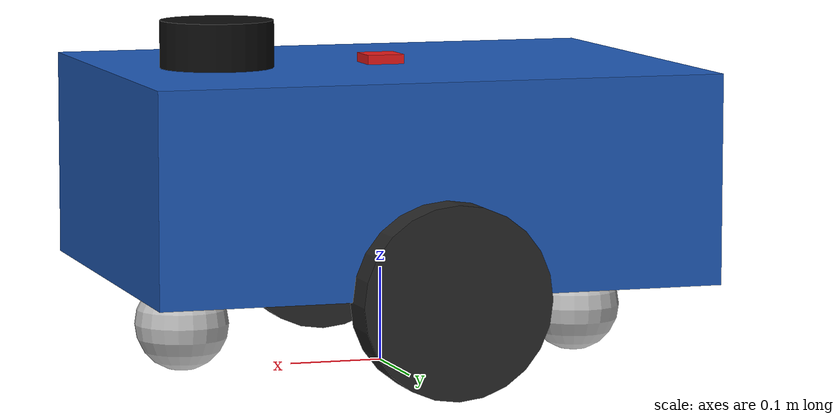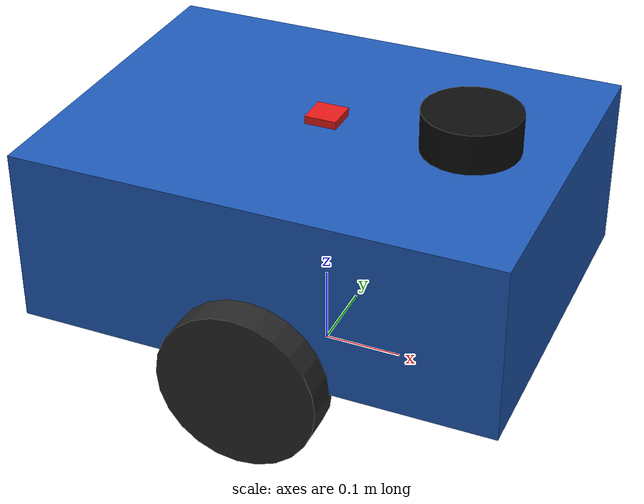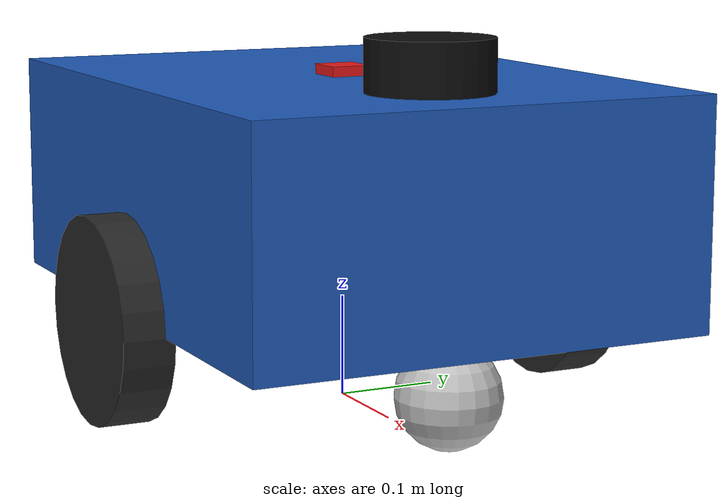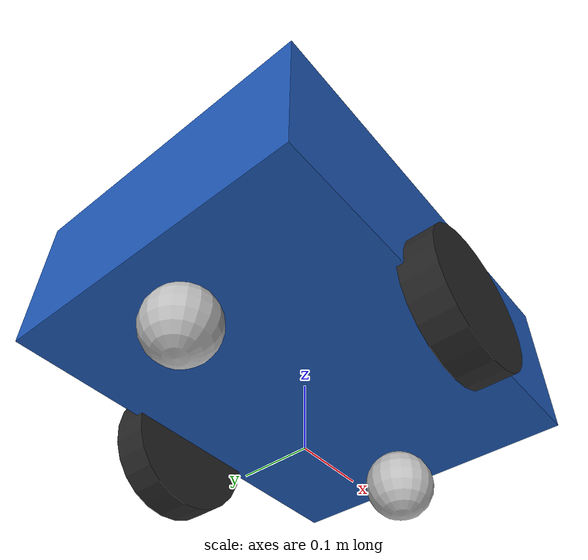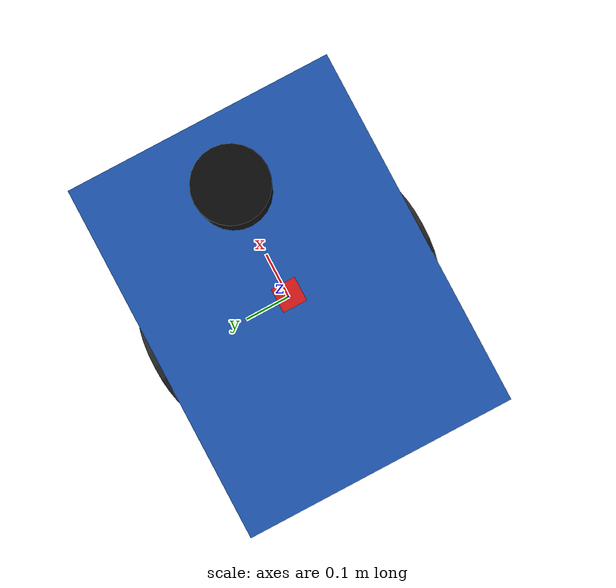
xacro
<?xml version="1.0"?>
<robot xmlns:xacro="http://www.ros.org/wiki/xacro" name="navigrid_amr">

  <!-- Robot Properties -->
  <xacro:property name="chassis_length" value="0.60"/>
  <xacro:property name="chassis_width"  value="0.45"/>
  <xacro:property name="chassis_height" value="0.22"/>
  <xacro:property name="chassis_mass"   value="18.0"/>

  <xacro:property name="wheel_radius"   value="0.10"/>
  <xacro:property name="wheel_width"    value="0.05"/>
  <xacro:property name="wheel_separation" value="0.48"/>
  <xacro:property name="wheel_mass"     value="2.0"/>

  <xacro:property name="caster_radius"  value="0.05"/>
  <xacro:property name="caster_mass"    value="0.75"/>

  <!-- Base Footprint (projection on ground) -->
  <link name="base_footprint"/>

  <joint name="base_footprint_joint" type="fixed">
    <parent link="base_footprint"/>
    <child link="base_link"/>
    <origin xyz="0 0 ${wheel_radius}" rpy="0 0 0"/>
  </joint>

  <!-- Base Link (Chassis) -->
  <link name="base_link">
    <visual>
      <origin xyz="0 0 ${chassis_height/2}" rpy="0 0 0"/>
      <geometry>
        <box size="${chassis_length} ${chassis_width} ${chassis_height}"/>
      </geometry>
      <material name="primary_blue">
        <color rgba="0.12 0.35 0.72 1.0"/>
      </material>
    </visual>
    <collision>
      <origin xyz="0 0 ${chassis_height/2}" rpy="0 0 0"/>
      <geometry>
        <box size="${chassis_length} ${chassis_width} ${chassis_height}"/>
      </geometry>
    </collision>
    <inertial>
      <origin xyz="0 0 ${chassis_height/2}" rpy="0 0 0"/>
      <mass value="${chassis_mass}"/>
      <inertia
        ixx="${(1.0/12.0) * chassis_mass * (chassis_width*chassis_width + chassis_height*chassis_height)}"
        ixy="0.0" ixz="0.0"
        iyy="${(1.0/12.0) * chassis_mass * (chassis_length*chassis_length + chassis_height*chassis_height)}"
        iyz="0.0"
        izz="${(1.0/12.0) * chassis_mass * (chassis_length*chassis_length + chassis_width*chassis_width)}"/>
    </inertial>
  </link>

  <!-- Drive Wheel Macro -->
  <xacro:macro name="drive_wheel" params="prefix y_offset">
    <link name="${prefix}_wheel_link">
      <visual>
        <origin xyz="0 0 0" rpy="${pi/2} 0 0"/>
        <geometry>
          <cylinder radius="${wheel_radius}" length="${wheel_width}"/>
        </geometry>
        <material name="wheel_dark">
          <color rgba="0.15 0.15 0.15 1.0"/>
        </material>
      </visual>
      <collision>
        <origin xyz="0 0 0" rpy="${pi/2} 0 0"/>
        <geometry>
          <cylinder radius="${wheel_radius}" length="${wheel_width}"/>
        </geometry>
      </collision>
      <inertial>
        <origin xyz="0 0 0" rpy="${pi/2} 0 0"/>
        <mass value="${wheel_mass}"/>
        <inertia
          ixx="${(1.0/12.0) * wheel_mass * (3*wheel_radius*wheel_radius + wheel_width*wheel_width)}"
          ixy="0.0" ixz="0.0"
          iyy="${(1.0/12.0) * wheel_mass * (3*wheel_radius*wheel_radius + wheel_width*wheel_width)}"
          iyz="0.0"
          izz="${0.5 * wheel_mass * wheel_radius * wheel_radius}"/>
      </inertial>
    </link>

    <joint name="${prefix}_wheel_joint" type="continuous">
      <parent link="base_link"/>
      <child link="${prefix}_wheel_link"/>
      <origin xyz="0 ${y_offset} 0" rpy="0 0 0"/>
      <axis xyz="0 1 0"/>
    </joint>
  </xacro:macro>

  <xacro:drive_wheel prefix="left"  y_offset="${wheel_separation / 2}"/>
  <xacro:drive_wheel prefix="right" y_offset="-${wheel_separation / 2}"/>

  <!-- Passive Caster Wheel Macro -->
  <xacro:macro name="caster_wheel" params="prefix x_offset">
    <link name="${prefix}_caster_link">
      <visual>
        <geometry>
          <sphere radius="${caster_radius}"/>
        </geometry>
        <material name="caster_silver">
          <color rgba="0.75 0.75 0.75 1.0"/>
        </material>
      </visual>
      <collision>
        <geometry>
          <sphere radius="${caster_radius}"/>
        </geometry>
      </collision>
      <inertial>
        <mass value="${caster_mass}"/>
        <inertia
          ixx="${(2.0/5.0) * caster_mass * caster_radius * caster_radius}" ixy="0.0" ixz="0.0"
          iyy="${(2.0/5.0) * caster_mass * caster_radius * caster_radius}" iyz="0.0"
          izz="${(2.0/5.0) * caster_mass * caster_radius * caster_radius}"/>
      </inertial>
    </link>

    <joint name="${prefix}_caster_joint" type="fixed">
      <parent link="base_link"/>
      <child link="${prefix}_caster_link"/>
      <origin xyz="${x_offset} 0 -${wheel_radius - caster_radius}" rpy="0 0 0"/>
    </joint>
  </xacro:macro>

  <xacro:caster_wheel prefix="front" x_offset="0.22"/>
  <xacro:caster_wheel prefix="rear"  x_offset="-0.22"/>

  <!-- LIDAR Sensor Link -->
  <link name="lidar_link">
    <visual>
      <origin xyz="0 0 0" rpy="0 0 0"/>
      <geometry>
        <cylinder radius="0.06" length="0.05"/>
      </geometry>
      <material name="sensor_black">
        <color rgba="0.05 0.05 0.05 1.0"/>
      </material>
    </visual>
    <collision>
      <origin xyz="0 0 0" rpy="0 0 0"/>
      <geometry>
        <cylinder radius="0.06" length="0.05"/>
      </geometry>
    </collision>
    <inertial>
      <mass value="0.3"/>
      <inertia ixx="0.001" ixy="0.0" ixz="0.0" iyy="0.001" iyz="0.0" izz="0.001"/>
    </inertial>
  </link>

  <joint name="lidar_joint" type="fixed">
    <parent link="base_link"/>
    <child link="lidar_link"/>
    <origin xyz="0.18 0 ${chassis_height + 0.025}" rpy="0 0 0"/>
  </joint>

  <!-- IMU Sensor Link -->
  <link name="imu_link">
    <visual>
      <geometry>
        <box size="0.04 0.04 0.02"/>
      </geometry>
      <material name="imu_red">
        <color rgba="0.9 0.1 0.1 1.0"/>
      </material>
    </visual>
    <collision>
      <geometry>
        <box size="0.04 0.04 0.02"/>
      </geometry>
    </collision>
    <inertial>
      <mass value="0.05"/>
      <inertia ixx="0.0001" ixy="0.0" ixz="0.0" iyy="0.0001" iyz="0.0" izz="0.0001"/>
    </inertial>
  </link>

  <joint name="imu_joint" type="fixed">
    <parent link="base_link"/>
    <child link="imu_link"/>
    <origin xyz="0 0 ${chassis_height}" rpy="0 0 0"/>
  </joint>

  <!-- Gazebo Sim Plugins & Sensors -->
  <gazebo reference="lidar_link">
    <sensor name="lidar_sensor" type="gpu_lidar">
      <pose>0 0 0 0 0 0</pose>
      <topic>scan</topic>
      <frame_id>lidar_link</frame_id>
      <update_rate>15</update_rate>
      <ray>
        <scan>
          <horizontal>
            <samples>640</samples>
            <resolution>1</resolution>
            <min_angle>-3.14159</min_angle>
            <max_angle>3.14159</max_angle>
          </horizontal>
        </scan>
        <range>
          <min>0.15</min>
          <max>25.0</max>
          <resolution>0.01</resolution>
        </range>
      </ray>
      <always_on>1</always_on>
      <visualize>true</visualize>
    </sensor>
  </gazebo>

  <gazebo reference="imu_link">
    <sensor name="imu_sensor" type="imu">
      <always_on>1</always_on>
      <update_rate>100</update_rate>
      <topic>imu</topic>
      <frame_id>imu_link</frame_id>
    </sensor>
  </gazebo>

  <gazebo>
    <plugin filename="gz-sim-diff-drive-system" name="gz::sim::systems::DiffDrive">
      <left_joint>left_wheel_joint</left_joint>
      <right_joint>right_wheel_joint</right_joint>
      <wheel_separation>${wheel_separation}</wheel_separation>
      <wheel_radius>${wheel_radius}</wheel_radius>
      <max_linear_acceleration>2.0</max_linear_acceleration>
      <min_linear_acceleration>-2.0</min_linear_acceleration>
      <max_angular_acceleration>3.0</max_angular_acceleration>
      <min_angular_acceleration>-3.0</min_angular_acceleration>
      <topic>cmd_vel</topic>
      <odom_topic>odom</odom_topic>
      <frame_id>odom</frame_id>
      <child_frame_id>base_footprint</child_frame_id>
    </plugin>

    <plugin filename="gz-sim-joint-state-publisher-system" name="gz::sim::systems::JointStatePublisher">
      <topic>joint_states</topic>
    </plugin>
  </gazebo>

</robot>
